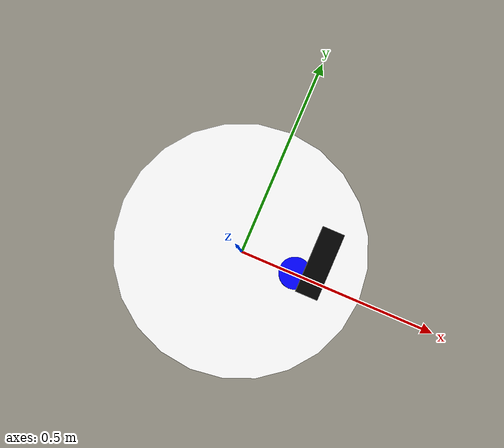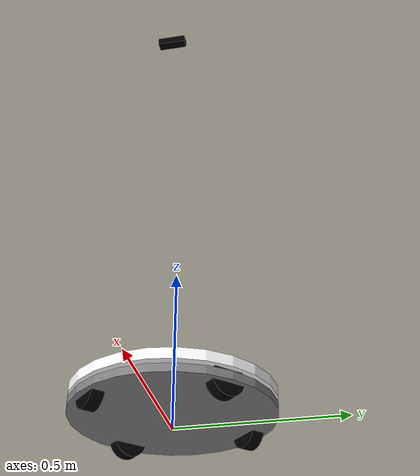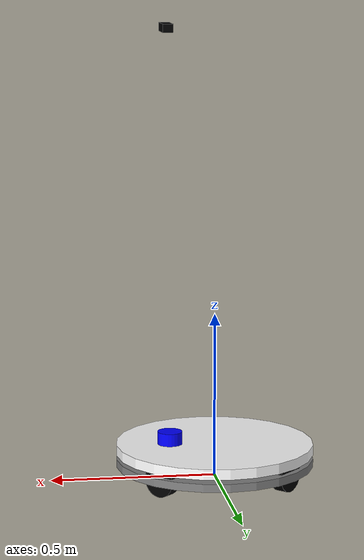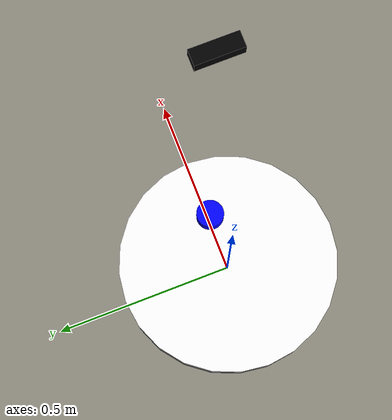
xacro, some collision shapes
<?xml version="1.0"?>
<robot name="omni_robot" xmlns:xacro="http://ros.org/wiki/xacro">
  <material name="gray">
    <color rgba="0.5 0.5 0.5 1"/>
  </material>

  <material name="black">
    <color rgba="0 0 0 1"/>
  </material>

  <material name="white">
    <color rgba="1 1 1 1"/>
  </material>

  <material name="blue">
    <color rgba="0 0 1 1"/>
  </material>

  <!-- Base Footprint (ROOT) -->
  <link name="base_footprint">
    <visual>
      <geometry>
        <box size="0.001 0.001 0.001"/>
      </geometry>
      <material name="black"/>
    </visual>
    <inertial>
      <mass value="0.001"/>
      <origin xyz="0 0 0"/>
      <inertia ixx="0.0001" ixy="0" ixz="0" iyy="0.0001" iyz="0" izz="0.0001"/>
    </inertial>
  </link>

  <link name="base_link">
    <visual>
      <geometry>
        <mesh filename="package://robot_description/urdf/main/meshes/base_link.stl"/>
      </geometry>
      <material name="gray"/>
    </visual>
    <collision>
      <geometry>
        <cylinder radius="0.30" length="0.02441"/>
      </geometry>
    </collision>
    <inertial>
      <mass value="2.0"/>
      <origin xyz="0 0 0"/>
      <inertia ixx="0.035" ixy="0" ixz="0" iyy="0.035" iyz="0" izz="0.07"/>
    </inertial>
  </link>

  <joint name="base_footprint_joint" type="fixed">
    <parent link="base_footprint"/>
    <child link="base_link"/>
    <origin xyz="0 0 0.04667" rpy="0 0 0"/>
  </joint>

  <!-- Base Up Link — same shared octagonal-top mesh as the real robot. -->
  <link name="baseup_link">
    <visual>
      <geometry>
        <mesh filename="package://robot_description/urdf/main/meshes/baseup_link.stl"/>
      </geometry>
      <material name="white"/>
    </visual>
    <collision>
      <geometry>
        <cylinder radius="0.30" length="0.03136"/>
      </geometry>
    </collision>
    <inertial>
      <mass value="1.0"/>
      <origin xyz="0 0 0"/>
      <inertia ixx="0.014" ixy="0" ixz="0" iyy="0.014" iyz="0" izz="0.027"/>
    </inertial>
  </link>

  <joint name="baseup_joint" type="fixed">
    <parent link="base_link"/>
    <child link="baseup_link"/>
    <origin xyz="0 0 0.04068" rpy="0 0 0"/>
  </joint>

  <!-- Wheel Macro -->
  <xacro:macro name="omni_wheel" params="wheel_name x y z roll pitch yaw">
    <link name="${wheel_name}">
      <visual>
        <geometry>
          <cylinder radius="0.05" length="0.03804"/>
        </geometry>
        <!-- Rotate cylinder so axis (Z) aligns with Y -->
        <origin xyz="0 0 0" rpy="1.5708 0 0"/>
        <material name="black"/>
      </visual>
      <collision>
        <geometry>
          <cylinder radius="0.05" length="0.03804"/>
        </geometry>
        <!-- Collision follows Physics (Parallel) for smooth rolling -->
        <origin xyz="0 0 0" rpy="1.5708 0 0"/>
      </collision>
      <inertial>
        <mass value="0.5"/>
        <origin xyz="0 0 0"/>
        <inertia ixx="0.0004" ixy="0" ixz="0" iyy="0.0004" iyz="0" izz="0.0006"/>
      </inertial>
    </link>

    <gazebo reference="${wheel_name}">
      <mu1>1.0</mu1>
      <mu2>0.0</mu2>
      <fdir1>1 0 0</fdir1>
      <kp>1e7</kp>
      <kd>1.0</kd>
      <minDepth>0.001</minDepth>
      <maxVel>1.0</maxVel>
    </gazebo>

    <joint name="joint_${wheel_name}" type="continuous">
      <parent link="base_link"/>
      <child link="${wheel_name}"/>
      <origin xyz="${x} ${y} ${z}" rpy="${roll} ${pitch} ${yaw}"/>
      <axis xyz="0 1 0"/>
    </joint>
  </xacro:macro>

  <xacro:omni_wheel wheel_name="Rear_Left"   x="-0.1842" y=" 0.1842" z="0" roll="0" pitch="0" yaw="+0.785398"/>
  <xacro:omni_wheel wheel_name="Front_Right" x=" 0.1842" y="-0.1842" z="0" roll="0" pitch="0" yaw="+0.785398"/>
  <xacro:omni_wheel wheel_name="Front_Left"  x=" 0.1842" y=" 0.1842" z="0" roll="0" pitch="0" yaw="-0.785398"/>
  <xacro:omni_wheel wheel_name="Rear_Right"  x="-0.1842" y="-0.1842" z="0" roll="0" pitch="0" yaw="-0.785398"/>

  <!-- Lidar Link -->
  <link name="lidar_link">
    <visual>
      <geometry>
        <cylinder radius="0.03785" length="0.0413"/>
      </geometry>
      <material name="blue"/>
    </visual>
    <collision>
      <geometry>
        <cylinder radius="0.03785" length="0.0413"/>
      </geometry>
    </collision>
    <inertial>
      <mass value="0.2"/>
      <origin xyz="0 0 0"/>
      <inertia ixx="0.0001" ixy="0" ixz="0" iyy="0.0001" iyz="0" izz="0.0001"/>
    </inertial>
  </link>

  <joint name="lidar_joint" type="fixed">
    <parent link="baseup_link"/>
    <child link="lidar_link"/>
    <origin xyz="0.137 0 0.0335" rpy="0 0 0"/>
  </joint>

  <!-- Camera Link (RGBD, approximates real RealSense D435 placement) -->
  <link name="camera_link">
    <visual>
      <geometry>
        <box size="0.03 0.09 0.025"/>
      </geometry>
      <material name="black"/>
    </visual>
    <inertial>
      <mass value="0.05"/>
      <origin xyz="0 0 0"/>
      <inertia ixx="1e-5" ixy="0" ixz="0" iyy="1e-5" iyz="0" izz="1e-5"/>
    </inertial>
  </link>

  <joint name="camera_joint" type="fixed">
    <parent link="baseup_link"/>
    <child link="camera_link"/>
    <origin xyz="0.149 0 1.272" rpy="0 0 0"/>
  </joint>

  <!-- REP-103 optical frame (+Z forward, +X right, +Y down) for YOLO/vision -->
  <link name="camera_color_optical_frame"/>
  <joint name="camera_optical_joint" type="fixed">
    <parent link="camera_link"/>
    <child link="camera_color_optical_frame"/>
    <origin xyz="0 0 0" rpy="-1.5707963 0 -1.5707963"/>
  </joint>

  <gazebo>
    <!-- Drive Control Only (Odom is inaccurate for X-Drive) -->
    <plugin
      filename="gz-sim-mecanum-drive-system"
      name="ignition::gazebo::systems::MecanumDrive">
      <front_left_joint>joint_Front_Left</front_left_joint>
      <front_right_joint>joint_Front_Right</front_right_joint>
      <back_left_joint>joint_Rear_Left</back_left_joint>
      <back_right_joint>joint_Rear_Right</back_right_joint>
      <wheel_separation>0.3684</wheel_separation>
      <wheelbase>0.3684</wheelbase>
      <wheel_radius>0.05</wheel_radius>
      <min_acceleration>-10</min_acceleration>
      <max_acceleration>10</max_acceleration>
      <topic>cmd_vel</topic>
      <!-- Disable Plugin Odom by diverting to trash topics -->
      <odom_topic>odom_trash</odom_topic>
      <tf_topic>tf_trash</tf_topic>
      <frame_id>odom</frame_id>
      <child_frame_id>base_footprint</child_frame_id>
    </plugin>

    <!-- Ground Truth Odometry (Perfect Localization) -->
    <plugin
      filename="gz-sim-odometry-publisher-system"
      name="ignition::gazebo::systems::OdometryPublisher">
      <odom_frame>odom</odom_frame>
      <robot_base_frame>base_footprint</robot_base_frame>
      <odom_topic>odometry</odom_topic>
      <tf_topic>tf</tf_topic>
      <dimensions>2</dimensions> <!-- 2D Odom -->
      <odom_publish_frequency>50</odom_publish_frequency>
    </plugin>

    <plugin
      filename="gz-sim-joint-state-publisher-system"
      name="ignition::gazebo::systems::JointStatePublisher">
      <topic>/joint_states</topic>
    </plugin>
  </gazebo>

  <gazebo reference="lidar_link">
    <sensor name="lidar" type="gpu_lidar">
      <pose>0 0 0 0 0 0</pose>
      <always_on>true</always_on>
      <visualize>true</visualize>
      <topic>/scan</topic>
      <update_rate>10</update_rate>
      <gz_frame_id>lidar_link</gz_frame_id>
      <ray>
        <scan>
          <horizontal>
            <samples>360</samples>
            <resolution>1</resolution>
            <min_angle>-3.14159</min_angle>
            <max_angle>3.14159</max_angle>
          </horizontal>
          <vertical>
            <samples>1</samples>
            <resolution>0.01</resolution>
            <min_angle>0</min_angle>
            <max_angle>0</max_angle>
          </vertical>
        </scan>
        <range>
          <min>0.15</min>
          <max>10.0</max>
          <resolution>0.01</resolution>
        </range>
      </ray>
    </sensor>
  </gazebo>

  <gazebo reference="camera_link">
    <sensor name="rgbd_camera" type="rgbd_camera">
      <always_on>true</always_on>
      <update_rate>30</update_rate>
      <topic>/camera</topic>
      <gz_frame_id>camera_color_optical_frame</gz_frame_id>
      <camera>
        <horizontal_fov>1.2112</horizontal_fov>   <!-- ~69.4° RealSense D435 -->
        <image>
          <width>640</width>
          <height>480</height>
          <format>R8G8B8</format>
        </image>
        <clip>
          <near>0.3</near>
          <far>10.0</far>
        </clip>
        <depth_camera>
          <clip>
            <near>0.3</near>
            <far>10.0</far>
          </clip>
        </depth_camera>
      </camera>
    </sensor>
  </gazebo>

</robot>
